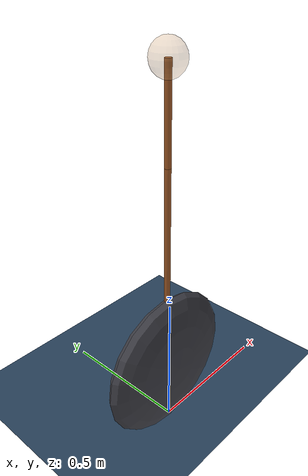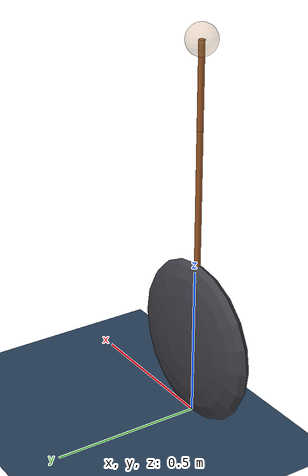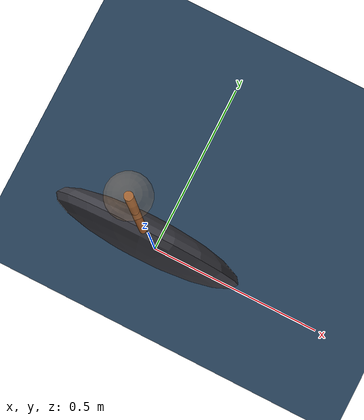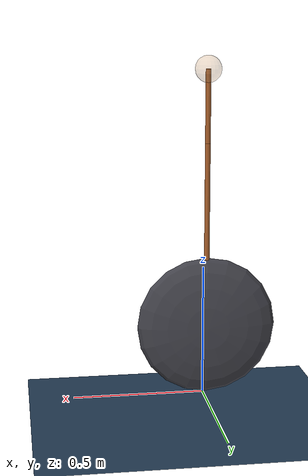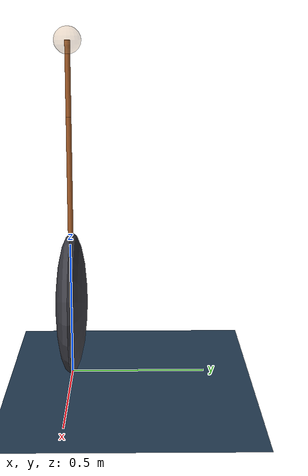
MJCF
<?xml version='1.0' encoding='utf-8'?>
<mujoco model="UnicycleSimplified">
  <compiler angle="radian" />

  <option
    timestep="0.005"
    integrator="implicitfast"
    impratio="100"
    cone="elliptic"
    solver="Newton"
    iterations="100"
    tolerance="1e-10"
    noslip_iterations="50"
    noslip_tolerance="1e-8"
  >
  </option>

  <visual>
    <global azimuth="120" elevation="-20" offwidth="2560" offheight="1440" />
    <map force="0.1" zfar="30" />
  </visual>

  <statistic center="0 0 0.7" />

  <asset>
    <texture type="skybox" colorspace="auto" name="texture_0_" builtin="gradient" rgb1="0.3 0.5 0.7" rgb2="0 0 0" width="32" height="192" />
    <texture type="cube" colorspace="auto" name="body" builtin="flat" mark="cross" rgb1="0.8 0.6 0.4" rgb2="0.8 0.6 0.4" markrgb="1 1 1" width="128" height="768" />
    <texture type="2d" colorspace="auto" name="grid" builtin="checker" rgb1="0.1 0.2 0.3" rgb2="0.2 0.3 0.4" width="512" height="512" />
    <material name="body" texture="body" texuniform="true" rgba="0.8 0.6 0.4 1" />
    <material name="grid" texture="grid" texuniform="true" reflectance="0.2" />
  </asset>

  <worldbody>
    <geom name="floor" size="0 0 0.05" type="plane" material="grid" />
    <light name="spotlight" target="com" pos="0 -6 4" dir="0 0 -1" cutoff="30" diffuse="0.8 0.8 0.8" mode="targetbodycom" />
    <light name="top" pos="0 0 2" dir="0 0 -1" mode="trackcom" />

    <body name="wheel" pos="-0.0131 0 0.27">
      <joint name="root" type="free" />
      <geom
        name="wheel_collision"
        size="0.267329 0.267329 0.057815"
        quat="0.7071068 0.7071068 0 0"
        type="ellipsoid"
        rgba="0.25 0.25 0.28 1"
        condim="4"
        friction="1.5 0.01 0.0001"
        solref="0.001 1"
        solimp="0.99 0.999 0.001"
        density="750"
      />
      <body name="seat" pos="-0.005 0 0.6096">
        <joint name="wheel" pos="0.005 0 -0.6096" axis="0 -1 0" limited="false" actuatorfrclimited="false" />
        <inertial pos="0 0 0" mass="0.001" diaginertia="1e-8 1e-8 1e-8" />
        <!-- Visual-only thin rod: pelvis hinge -> wheel center (seat-body frame). -->
        <geom name="link_pelvis_to_wheel" type="cylinder" fromto="0.005 0 0.0954 0.005 0 -0.6096" size="0.01" contype="0" conaffinity="0" material="body" group="1" />
        <geom name="body_shell" type="capsule" pos="0.109486 -0.004766 0.035339" size="0.2255 0.5" group="3" rgba="0.5 0.5 0.9 0.25" density="0" />

        <body name="com" pos="0.005 0 0.369073">
          <joint name="pelvis_y" pos="0 0 -0.273673" axis="0 -1 0" limited="true" range="-0.872665 0.872665" actuatorfrclimited="false" />
          <joint name="pelvis_x" pos="0 0 -0.273673" axis="-1 0 0" limited="true" range="-0.698132 0.698132" actuatorfrclimited="false" />
          <inertial pos="0 0 0" mass="23.566842" diaginertia="0.773919 1.104746 1.765585" />
          <geom name="com_marker" type="sphere" size="0.05" contype="0" conaffinity="0" rgba="0.8 0.6 0.4 0.3" />
          <!-- Visual-only thin rod: COM sphere -> pelvis hinge (com-body frame). -->
          <geom name="link_com_to_pelvis" type="cylinder" fromto="0 0 0 0 0 -0.273673" size="0.01" contype="0" conaffinity="0" material="body" group="1" />
        </body>
      </body>
    </body>
  </worldbody>

  <actuator>
    <motor name="pelvis_y" joint="pelvis_y" ctrllimited="true" ctrlrange="-80 80" gear="1 0 0 0 0 0" />
    <motor name="pelvis_x" joint="pelvis_x" ctrllimited="true" ctrlrange="-80 80" gear="1 0 0 0 0 0" />
    <motor name="wheel" joint="wheel" ctrllimited="true" ctrlrange="-20 20" gear="1 0 0 0 0 0"/>
  </actuator>
</mujoco>
